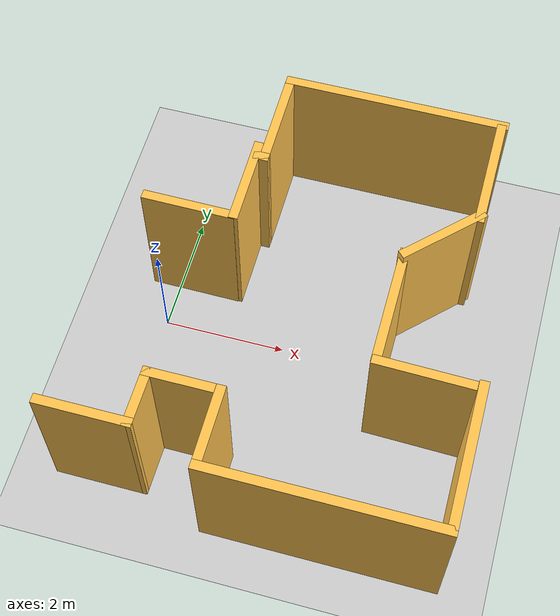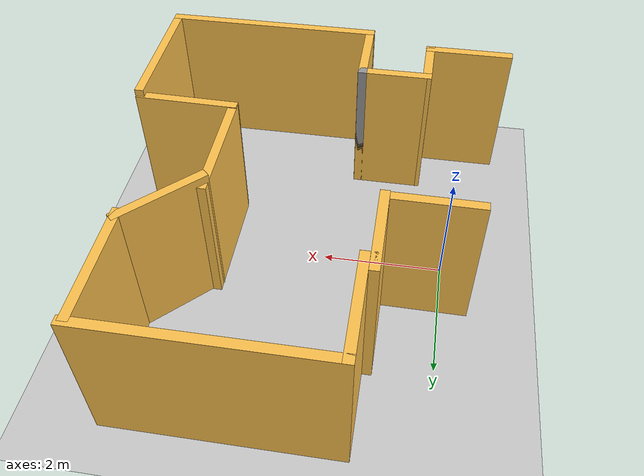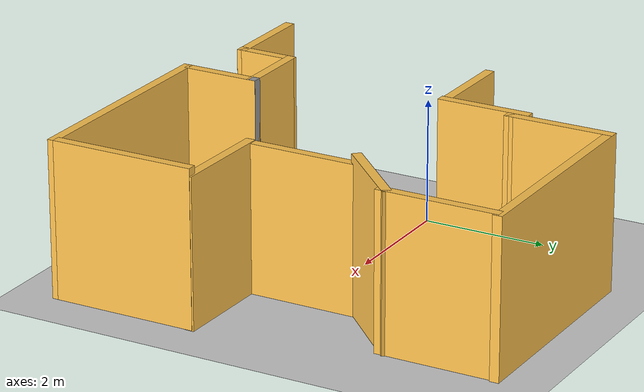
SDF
<sdf version="1.6">
 <world name="default">
  <model name="ground_plane">
   <static>1</static>
   <link name="link">
    <collision name="collision">
     <geometry><plane><normal>0 0 1</normal><size>100 100</size></plane></geometry>
     <surface>
      <contact><collide_bitmask>65535</collide_bitmask></contact>
      <friction><ode><mu>100</mu><mu2>50</mu2></ode></friction>
     </surface>
    </collision>
    <visual name="visual">
     <cast_shadows>0</cast_shadows>
     <geometry><plane><normal>0 0 1</normal><size>100 100</size></plane></geometry>
     <material>
      <script><uri>file://media/materials/scripts/gazebo.material</uri><name>Gazebo/Grey</name></script>
     </material>
    </visual>
   </link>
  </model>
  <model name="OrangeWorld_1">
   <link name="Wall_0">
    <pose>5.01158 -2.74468 0 0 -0 1.57358</pose>
    <visual name="Wall_0_Visual">
     <pose>0 0 1.25 0 -0 0</pose>
     <geometry><box><size>2.30301 0.15 2.5</size></box></geometry>
     <material>
      <script><uri>file://media/materials/scripts/gazebo.material</uri><name>Gazebo/Grey</name></script>
      <ambient>1 0.764706 0.305882 1</ambient>
      <shader type="pixel"/>
      <diffuse>0.7 0.7 0.7 1</diffuse>
      <specular>0.01 0.01 0.01 1</specular>
      <emissive>0 0 0 1</emissive>
     </material>
     <meta><layer>0</layer></meta>
    </visual>
    <collision name="Wall_0_Collision">
     <pose>0 0 1.25 0 -0 0</pose>
     <geometry><box><size>2.30301 0.15 2.5</size></box></geometry>
     <surface>
      <friction>
       <ode><mu>1</mu><mu2>1</mu2><fdir1>0 0 0</fdir1><slip1>0</slip1><slip2>0</slip2></ode>
       <torsional>
        <coefficient>1</coefficient>
        <patch_radius>0</patch_radius>
        <surface_radius>0</surface_radius>
        <use_patch_radius>1</use_patch_radius>
        <ode><slip>0</slip></ode>
       </torsional>
      </friction>
      <bounce><restitution_coefficient>0</restitution_coefficient><threshold>1e+06</threshold></bounce>
      <contact>
       <collide_without_contact>0</collide_without_contact>
       <collide_without_contact_bitmask>1</collide_without_contact_bitmask>
       <collide_bitmask>1</collide_bitmask>
       <ode>
        <soft_cfm>0</soft_cfm>
        <soft_erp>0.2</soft_erp>
        <kp>1e+13</kp>
        <kd>1</kd>
        <max_vel>0.01</max_vel>
        <min_depth>0</min_depth>
       </ode>
       <bullet>
        <split_impulse>1</split_impulse>
        <split_impulse_penetration_threshold>-0.01</split_impulse_penetration_threshold>
        <soft_cfm>0</soft_cfm>
        <soft_erp>0.2</soft_erp>
        <kp>1e+13</kp>
        <kd>1</kd>
       </bullet>
      </contact>
     </surface>
    </collision>
   </link>
   <link name="Wall_1">
    <pose>4.21704 -1.62322 -0.123 0 -0 3.12118</pose>
    <visual name="Wall_1_Visual">
     <pose>0 0 1.25 0 -0 0</pose>
     <geometry><box><size>1.72186 0.15 2.5</size></box></geometry>
     <material>
      <script><uri>file://media/materials/scripts/gazebo.material</uri><name>Gazebo/Grey</name></script>
      <ambient>1 0.764706 0.305882 1</ambient>
      <shader type="pixel"/>
      <diffuse>0.7 0.7 0.7 1</diffuse>
      <specular>0.01 0.01 0.01 1</specular>
      <emissive>0 0 0 1</emissive>
     </material>
     <meta><layer>0</layer></meta>
    </visual>
    <collision name="Wall_1_Collision">
     <pose>0 0 1.25 0 -0 0</pose>
     <geometry><box><size>1.72186 0.15 2.5</size></box></geometry>
     <surface>
      <friction>
       <ode><mu>1</mu><mu2>1</mu2><fdir1>0 0 0</fdir1><slip1>0</slip1><slip2>0</slip2></ode>
       <torsional>
        <coefficient>1</coefficient>
        <patch_radius>0</patch_radius>
        <surface_radius>0</surface_radius>
        <use_patch_radius>1</use_patch_radius>
        <ode><slip>0</slip></ode>
       </torsional>
      </friction>
      <bounce><restitution_coefficient>0</restitution_coefficient><threshold>1e+06</threshold></bounce>
      <contact>
       <collide_without_contact>0</collide_without_contact>
       <collide_without_contact_bitmask>1</collide_without_contact_bitmask>
       <collide_bitmask>1</collide_bitmask>
       <ode>
        <soft_cfm>0</soft_cfm>
        <soft_erp>0.2</soft_erp>
        <kp>1e+13</kp>
        <kd>1</kd>
        <max_vel>0.01</max_vel>
        <min_depth>0</min_depth>
       </ode>
       <bullet>
        <split_impulse>1</split_impulse>
        <split_impulse_penetration_threshold>-0.01</split_impulse_penetration_threshold>
        <soft_cfm>0</soft_cfm>
        <soft_erp>0.2</soft_erp>
        <kp>1e+13</kp>
        <kd>1</kd>
       </bullet>
      </contact>
     </surface>
    </collision>
   </link>
   <link name="Wall_12">
    <pose>0.018082 0.204928 -0.021351 0 -0 3.13458</pose>
    <visual name="Wall_12_Visual">
     <pose>0 0 1.25 0 -0 0</pose>
     <geometry><box><size>1.5 0.15 2.5</size></box></geometry>
     <material>
      <script><uri>file://media/materials/scripts/gazebo.material</uri><name>Gazebo/Grey</name></script>
      <ambient>1 0.764706 0.305882 1</ambient>
      <shader type="pixel"/>
      <diffuse>0.7 0.7 0.7 1</diffuse>
      <specular>0.01 0.01 0.01 1</specular>
      <emissive>0 0 0 1</emissive>
     </material>
     <meta><layer>0</layer></meta>
    </visual>
    <collision name="Wall_12_Collision">
     <pose>0 0 1.25 0 -0 0</pose>
     <geometry><box><size>1.5 0.15 2.5</size></box></geometry>
     <surface>
      <friction>
       <ode><mu>1</mu><mu2>1</mu2><fdir1>0 0 0</fdir1><slip1>0</slip1><slip2>0</slip2></ode>
       <torsional>
        <coefficient>1</coefficient>
        <patch_radius>0</patch_radius>
        <surface_radius>0</surface_radius>
        <use_patch_radius>1</use_patch_radius>
        <ode><slip>0</slip></ode>
       </torsional>
      </friction>
      <bounce><restitution_coefficient>0</restitution_coefficient><threshold>1e+06</threshold></bounce>
      <contact>
       <collide_without_contact>0</collide_without_contact>
       <collide_without_contact_bitmask>1</collide_without_contact_bitmask>
       <collide_bitmask>1</collide_bitmask>
       <ode>
        <soft_cfm>0</soft_cfm>
        <soft_erp>0.2</soft_erp>
        <kp>1e+13</kp>
        <kd>1</kd>
        <max_vel>0.01</max_vel>
        <min_depth>0</min_depth>
       </ode>
       <bullet>
        <split_impulse>1</split_impulse>
        <split_impulse_penetration_threshold>-0.01</split_impulse_penetration_threshold>
        <soft_cfm>0</soft_cfm>
        <soft_erp>0.2</soft_erp>
        <kp>1e+13</kp>
        <kd>1</kd>
       </bullet>
      </contact>
     </surface>
    </collision>
   </link>
   <link name="Wall_2">
    <pose>3.42333 -0.629117 -0.136708 0 -0 1.5708</pose>
    <visual name="Wall_2_Visual">
     <pose>0 0 1.25 0 -0 0</pose>
     <geometry><box><size>2 0.15 2.5</size></box></geometry>
     <material>
      <script><uri>file://media/materials/scripts/gazebo.material</uri><name>Gazebo/Grey</name></script>
      <ambient>1 0.764706 0.305882 1</ambient>
      <shader type="pixel"/>
      <diffuse>0.7 0.7 0.7 1</diffuse>
      <specular>0.01 0.01 0.01 1</specular>
      <emissive>0 0 0 1</emissive>
     </material>
     <meta><layer>0</layer></meta>
    </visual>
    <collision name="Wall_2_Collision">
     <pose>0 0 1.25 0 -0 0</pose>
     <geometry><box><size>2 0.15 2.5</size></box></geometry>
     <surface>
      <friction>
       <ode><mu>1</mu><mu2>1</mu2><fdir1>0 0 0</fdir1><slip1>0</slip1><slip2>0</slip2></ode>
       <torsional>
        <coefficient>1</coefficient>
        <patch_radius>0</patch_radius>
        <surface_radius>0</surface_radius>
        <use_patch_radius>1</use_patch_radius>
        <ode><slip>0</slip></ode>
       </torsional>
      </friction>
      <bounce><restitution_coefficient>0</restitution_coefficient><threshold>1e+06</threshold></bounce>
      <contact>
       <collide_without_contact>0</collide_without_contact>
       <collide_without_contact_bitmask>1</collide_without_contact_bitmask>
       <collide_bitmask>1</collide_bitmask>
       <ode>
        <soft_cfm>0</soft_cfm>
        <soft_erp>0.2</soft_erp>
        <kp>1e+13</kp>
        <kd>1</kd>
        <max_vel>0.01</max_vel>
        <min_depth>0</min_depth>
       </ode>
       <bullet>
        <split_impulse>1</split_impulse>
        <split_impulse_penetration_threshold>-0.01</split_impulse_penetration_threshold>
        <soft_cfm>0</soft_cfm>
        <soft_erp>0.2</soft_erp>
        <kp>1e+13</kp>
        <kd>1</kd>
       </bullet>
      </contact>
     </surface>
    </collision>
   </link>
   <link name="Wall_25">
    <pose>-0.370475 -3.54744 0 0 -0 0</pose>
    <visual name="Wall_25_Visual">
     <pose>0 0 1.25 0 -0 0</pose>
     <geometry><box><size>1.5 0.15 2.5</size></box></geometry>
     <material>
      <script><uri>file://media/materials/scripts/gazebo.material</uri><name>Gazebo/Grey</name></script>
      <ambient>1 0.764706 0.305882 1</ambient>
      <shader type="pixel"/>
      <diffuse>0.7 0.7 0.7 1</diffuse>
      <specular>0.01 0.01 0.01 1</specular>
      <emissive>0 0 0 1</emissive>
     </material>
     <meta><layer>0</layer></meta>
    </visual>
    <collision name="Wall_25_Collision">
     <pose>0 0 1.25 0 -0 0</pose>
     <geometry><box><size>1.5 0.15 2.5</size></box></geometry>
     <surface>
      <friction>
       <ode><mu>1</mu><mu2>1</mu2><fdir1>0 0 0</fdir1><slip1>0</slip1><slip2>0</slip2></ode>
       <torsional>
        <coefficient>1</coefficient>
        <patch_radius>0</patch_radius>
        <surface_radius>0</surface_radius>
        <use_patch_radius>1</use_patch_radius>
        <ode><slip>0</slip></ode>
       </torsional>
      </friction>
      <bounce><restitution_coefficient>0</restitution_coefficient><threshold>1e+06</threshold></bounce>
      <contact>
       <collide_without_contact>0</collide_without_contact>
       <collide_without_contact_bitmask>1</collide_without_contact_bitmask>
       <collide_bitmask>1</collide_bitmask>
       <ode>
        <soft_cfm>0</soft_cfm>
        <soft_erp>0.2</soft_erp>
        <kp>1e+13</kp>
        <kd>1</kd>
        <max_vel>0.01</max_vel>
        <min_depth>0</min_depth>
       </ode>
       <bullet>
        <split_impulse>1</split_impulse>
        <split_impulse_penetration_threshold>-0.01</split_impulse_penetration_threshold>
        <soft_cfm>0</soft_cfm>
        <soft_erp>0.2</soft_erp>
        <kp>1e+13</kp>
        <kd>1</kd>
       </bullet>
      </contact>
     </surface>
    </collision>
   </link>
   <link name="Wall_26">
    <pose>0.309439 -3.13427 0 0 -0 1.5589</pose>
    <visual name="Wall_26_Visual">
     <pose>0 0 1.25 0 -0 0</pose>
     <geometry><box><size>0.976401 0.15 2.5</size></box></geometry>
     <material>
      <script><uri>file://media/materials/scripts/gazebo.material</uri><name>Gazebo/Grey</name></script>
      <ambient>1 0.764706 0.305882 1</ambient>
      <shader type="pixel"/>
      <diffuse>0.7 0.7 0.7 1</diffuse>
      <specular>0.01 0.01 0.01 1</specular>
      <emissive>0 0 0 1</emissive>
     </material>
     <meta><layer>0</layer></meta>
    </visual>
    <collision name="Wall_26_Collision">
     <pose>0 0 1.25 0 -0 0</pose>
     <geometry><box><size>0.976401 0.15 2.5</size></box></geometry>
     <surface>
      <friction>
       <ode><mu>1</mu><mu2>1</mu2><fdir1>0 0 0</fdir1><slip1>0</slip1><slip2>0</slip2></ode>
       <torsional>
        <coefficient>1</coefficient>
        <patch_radius>0</patch_radius>
        <surface_radius>0</surface_radius>
        <use_patch_radius>1</use_patch_radius>
        <ode><slip>0</slip></ode>
       </torsional>
      </friction>
      <bounce><restitution_coefficient>0</restitution_coefficient><threshold>1e+06</threshold></bounce>
      <contact>
       <collide_without_contact>0</collide_without_contact>
       <collide_without_contact_bitmask>1</collide_without_contact_bitmask>
       <collide_bitmask>1</collide_bitmask>
       <ode>
        <soft_cfm>0</soft_cfm>
        <soft_erp>0.2</soft_erp>
        <kp>1e+13</kp>
        <kd>1</kd>
        <max_vel>0.01</max_vel>
        <min_depth>0</min_depth>
       </ode>
       <bullet>
        <split_impulse>1</split_impulse>
        <split_impulse_penetration_threshold>-0.01</split_impulse_penetration_threshold>
        <soft_cfm>0</soft_cfm>
        <soft_erp>0.2</soft_erp>
        <kp>1e+13</kp>
        <kd>1</kd>
       </bullet>
      </contact>
     </surface>
    </collision>
   </link>
   <link name="Wall_27">
    <pose>0.864353 -2.7211 0 0 -0 0</pose>
    <visual name="Wall_27_Visual">
     <pose>0 0 1.25 0 -0 0</pose>
     <geometry><box><size>1.25 0.15 2.5</size></box></geometry>
     <material>
      <script><uri>file://media/materials/scripts/gazebo.material</uri><name>Gazebo/Grey</name></script>
      <ambient>1 0.764706 0.305882 1</ambient>
      <shader type="pixel"/>
      <diffuse>0.7 0.7 0.7 1</diffuse>
      <specular>0.01 0.01 0.01 1</specular>
      <emissive>0 0 0 1</emissive>
     </material>
     <meta><layer>0</layer></meta>
    </visual>
    <collision name="Wall_27_Collision">
     <pose>0 0 1.25 0 -0 0</pose>
     <geometry><box><size>1.25 0.15 2.5</size></box></geometry>
     <surface>
      <friction>
       <ode><mu>1</mu><mu2>1</mu2><fdir1>0 0 0</fdir1><slip1>0</slip1><slip2>0</slip2></ode>
       <torsional>
        <coefficient>1</coefficient>
        <patch_radius>0</patch_radius>
        <surface_radius>0</surface_radius>
        <use_patch_radius>1</use_patch_radius>
        <ode><slip>0</slip></ode>
       </torsional>
      </friction>
      <bounce><restitution_coefficient>0</restitution_coefficient><threshold>1e+06</threshold></bounce>
      <contact>
       <collide_without_contact>0</collide_without_contact>
       <collide_without_contact_bitmask>1</collide_without_contact_bitmask>
       <collide_bitmask>1</collide_bitmask>
       <ode>
        <soft_cfm>0</soft_cfm>
        <soft_erp>0.2</soft_erp>
        <kp>1e+13</kp>
        <kd>1</kd>
        <max_vel>0.01</max_vel>
        <min_depth>0</min_depth>
       </ode>
       <bullet>
        <split_impulse>1</split_impulse>
        <split_impulse_penetration_threshold>-0.01</split_impulse_penetration_threshold>
        <soft_cfm>0</soft_cfm>
        <soft_erp>0.2</soft_erp>
        <kp>1e+13</kp>
        <kd>1</kd>
       </bullet>
      </contact>
     </surface>
    </collision>
   </link>
   <link name="Wall_28">
    <pose>1.41435 -2.7211 0 0 -0 0</pose>
    <visual name="Wall_28_Visual">
     <pose>0 0 1.25 0 -0 0</pose>
     <geometry><box><size>0.15 0.15 2.5</size></box></geometry>
     <material>
      <script><uri>file://media/materials/scripts/gazebo.material</uri><name>Gazebo/Grey</name></script>
      <ambient>1 1 1 1</ambient>
      <shader type="pixel"/>
      <diffuse>0.7 0.7 0.7 1</diffuse>
      <specular>0.01 0.01 0.01 1</specular>
      <emissive>0 0 0 1</emissive>
     </material>
     <meta><layer>0</layer></meta>
    </visual>
    <collision name="Wall_28_Collision">
     <pose>0 0 1.25 0 -0 0</pose>
     <geometry><box><size>0.15 0.15 2.5</size></box></geometry>
     <surface>
      <friction>
       <ode><mu>1</mu><mu2>1</mu2><fdir1>0 0 0</fdir1><slip1>0</slip1><slip2>0</slip2></ode>
       <torsional>
        <coefficient>1</coefficient>
        <patch_radius>0</patch_radius>
        <surface_radius>0</surface_radius>
        <use_patch_radius>1</use_patch_radius>
        <ode><slip>0</slip></ode>
       </torsional>
      </friction>
      <bounce><restitution_coefficient>0</restitution_coefficient><threshold>1e+06</threshold></bounce>
      <contact>
       <collide_without_contact>0</collide_without_contact>
       <collide_without_contact_bitmask>1</collide_without_contact_bitmask>
       <collide_bitmask>1</collide_bitmask>
       <ode>
        <soft_cfm>0</soft_cfm>
        <soft_erp>0.2</soft_erp>
        <kp>1e+13</kp>
        <kd>1</kd>
        <max_vel>0.01</max_vel>
        <min_depth>0</min_depth>
       </ode>
       <bullet>
        <split_impulse>1</split_impulse>
        <split_impulse_penetration_threshold>-0.01</split_impulse_penetration_threshold>
        <soft_cfm>0</soft_cfm>
        <soft_erp>0.2</soft_erp>
        <kp>1e+13</kp>
        <kd>1</kd>
       </bullet>
      </contact>
     </surface>
    </collision>
   </link>
   <link name="Wall_3">
    <pose>3.92482 0.704891 0 0 -0 0.788695</pose>
    <visual name="Wall_3_Visual">
     <pose>0 0 1.25 0 -0 0</pose>
     <geometry><box><size>1.53419 0.15 2.5</size></box></geometry>
     <material>
      <script><uri>file://media/materials/scripts/gazebo.material</uri><name>Gazebo/Grey</name></script>
      <ambient>1 0.764706 0.305882 1</ambient>
      <shader type="pixel"/>
      <diffuse>0.7 0.7 0.7 1</diffuse>
      <specular>0.01 0.01 0.01 1</specular>
      <emissive>0 0 0 1</emissive>
     </material>
     <meta><layer>0</layer></meta>
    </visual>
    <collision name="Wall_3_Collision">
     <pose>0 0 1.25 0 -0 0</pose>
     <geometry><box><size>1.53419 0.15 2.5</size></box></geometry>
     <surface>
      <friction>
       <ode><mu>1</mu><mu2>1</mu2><fdir1>0 0 0</fdir1><slip1>0</slip1><slip2>0</slip2></ode>
       <torsional>
        <coefficient>1</coefficient>
        <patch_radius>0</patch_radius>
        <surface_radius>0</surface_radius>
        <use_patch_radius>1</use_patch_radius>
        <ode><slip>0</slip></ode>
       </torsional>
      </friction>
      <bounce><restitution_coefficient>0</restitution_coefficient><threshold>1e+06</threshold></bounce>
      <contact>
       <collide_without_contact>0</collide_without_contact>
       <collide_without_contact_bitmask>1</collide_without_contact_bitmask>
       <collide_bitmask>1</collide_bitmask>
       <ode>
        <soft_cfm>0</soft_cfm>
        <soft_erp>0.2</soft_erp>
        <kp>1e+13</kp>
        <kd>1</kd>
        <max_vel>0.01</max_vel>
        <min_depth>0</min_depth>
       </ode>
       <bullet>
        <split_impulse>1</split_impulse>
        <split_impulse_penetration_threshold>-0.01</split_impulse_penetration_threshold>
        <soft_cfm>0</soft_cfm>
        <soft_erp>0.2</soft_erp>
        <kp>1e+13</kp>
        <kd>1</kd>
       </bullet>
      </contact>
     </surface>
    </collision>
   </link>
   <link name="Wall_31">
    <pose>1.41599 -3.2711 0 0 0 -1.5708</pose>
    <visual name="Wall_31_Visual">
     <pose>0 0 1.25 0 -0 0</pose>
     <geometry><box><size>1.25 0.15 2.5</size></box></geometry>
     <material>
      <script><uri>file://media/materials/scripts/gazebo.material</uri><name>Gazebo/Grey</name></script>
      <ambient>1 0.764706 0.305882 1</ambient>
      <shader type="pixel"/>
      <diffuse>0.7 0.7 0.7 1</diffuse>
      <specular>0.01 0.01 0.01 1</specular>
      <emissive>0 0 0 1</emissive>
     </material>
     <meta><layer>0</layer></meta>
    </visual>
    <collision name="Wall_31_Collision">
     <pose>0 0 1.25 0 -0 0</pose>
     <geometry><box><size>1.25 0.15 2.5</size></box></geometry>
     <surface>
      <friction>
       <ode><mu>1</mu><mu2>1</mu2><fdir1>0 0 0</fdir1><slip1>0</slip1><slip2>0</slip2></ode>
       <torsional>
        <coefficient>1</coefficient>
        <patch_radius>0</patch_radius>
        <surface_radius>0</surface_radius>
        <use_patch_radius>1</use_patch_radius>
        <ode><slip>0</slip></ode>
       </torsional>
      </friction>
      <bounce><restitution_coefficient>0</restitution_coefficient><threshold>1e+06</threshold></bounce>
      <contact>
       <collide_without_contact>0</collide_without_contact>
       <collide_without_contact_bitmask>1</collide_without_contact_bitmask>
       <collide_bitmask>1</collide_bitmask>
       <ode>
        <soft_cfm>0</soft_cfm>
        <soft_erp>0.2</soft_erp>
        <kp>1e+13</kp>
        <kd>1</kd>
        <max_vel>0.01</max_vel>
        <min_depth>0</min_depth>
       </ode>
       <bullet>
        <split_impulse>1</split_impulse>
        <split_impulse_penetration_threshold>-0.01</split_impulse_penetration_threshold>
        <soft_cfm>0</soft_cfm>
        <soft_erp>0.2</soft_erp>
        <kp>1e+13</kp>
        <kd>1</kd>
       </bullet>
      </contact>
     </surface>
    </collision>
   </link>
   <link name="Wall_32">
    <pose>3.21447 -3.91331 0 0 0 -2.4e-05</pose>
    <visual name="Wall_32_Visual">
     <pose>0 0 1.25 0 -0 0</pose>
     <geometry><box><size>3.75 0.15 2.5</size></box></geometry>
     <material>
      <script><uri>file://media/materials/scripts/gazebo.material</uri><name>Gazebo/Grey</name></script>
      <ambient>1 0.764706 0.305882 1</ambient>
      <shader type="pixel"/>
      <diffuse>0.7 0.7 0.7 1</diffuse>
      <specular>0.01 0.01 0.01 1</specular>
      <emissive>0 0 0 1</emissive>
     </material>
     <meta><layer>0</layer></meta>
    </visual>
    <collision name="Wall_32_Collision">
     <pose>0 0 1.25 0 -0 0</pose>
     <geometry><box><size>3.75 0.15 2.5</size></box></geometry>
     <surface>
      <friction>
       <ode><mu>1</mu><mu2>1</mu2><fdir1>0 0 0</fdir1><slip1>0</slip1><slip2>0</slip2></ode>
       <torsional>
        <coefficient>1</coefficient>
        <patch_radius>0</patch_radius>
        <surface_radius>0</surface_radius>
        <use_patch_radius>1</use_patch_radius>
        <ode><slip>0</slip></ode>
       </torsional>
      </friction>
      <bounce><restitution_coefficient>0</restitution_coefficient><threshold>1e+06</threshold></bounce>
      <contact>
       <collide_without_contact>0</collide_without_contact>
       <collide_without_contact_bitmask>1</collide_without_contact_bitmask>
       <collide_bitmask>1</collide_bitmask>
       <ode>
        <soft_cfm>0</soft_cfm>
        <soft_erp>0.2</soft_erp>
        <kp>1e+13</kp>
        <kd>1</kd>
        <max_vel>0.01</max_vel>
        <min_depth>0</min_depth>
       </ode>
       <bullet>
        <split_impulse>1</split_impulse>
        <split_impulse_penetration_threshold>-0.01</split_impulse_penetration_threshold>
        <soft_cfm>0</soft_cfm>
        <soft_erp>0.2</soft_erp>
        <kp>1e+13</kp>
        <kd>1</kd>
       </bullet>
      </contact>
     </surface>
    </collision>
   </link>
   <link name="Wall_4">
    <pose>4.40597 2.01968 0 0 -0 1.57095</pose>
    <visual name="Wall_4_Visual">
     <pose>0 0 1.25 0 -0 0</pose>
     <geometry><box><size>1.93193 0.15 2.5</size></box></geometry>
     <material>
      <script><uri>file://media/materials/scripts/gazebo.material</uri><name>Gazebo/Grey</name></script>
      <ambient>1 0.764706 0.305882 1</ambient>
      <shader type="pixel"/>
      <diffuse>0.7 0.7 0.7 1</diffuse>
      <specular>0.01 0.01 0.01 1</specular>
      <emissive>0 0 0 1</emissive>
     </material>
     <meta><layer>0</layer></meta>
    </visual>
    <collision name="Wall_4_Collision">
     <pose>0 0 1.25 0 -0 0</pose>
     <geometry><box><size>1.93193 0.15 2.5</size></box></geometry>
     <surface>
      <friction>
       <ode><mu>1</mu><mu2>1</mu2><fdir1>0 0 0</fdir1><slip1>0</slip1><slip2>0</slip2></ode>
       <torsional>
        <coefficient>1</coefficient>
        <patch_radius>0</patch_radius>
        <surface_radius>0</surface_radius>
        <use_patch_radius>1</use_patch_radius>
        <ode><slip>0</slip></ode>
       </torsional>
      </friction>
      <bounce><restitution_coefficient>0</restitution_coefficient><threshold>1e+06</threshold></bounce>
      <contact>
       <collide_without_contact>0</collide_without_contact>
       <collide_without_contact_bitmask>1</collide_without_contact_bitmask>
       <collide_bitmask>1</collide_bitmask>
       <ode>
        <soft_cfm>0</soft_cfm>
        <soft_erp>0.2</soft_erp>
        <kp>1e+13</kp>
        <kd>1</kd>
        <max_vel>0.01</max_vel>
        <min_depth>0</min_depth>
       </ode>
       <bullet>
        <split_impulse>1</split_impulse>
        <split_impulse_penetration_threshold>-0.01</split_impulse_penetration_threshold>
        <soft_cfm>0</soft_cfm>
        <soft_erp>0.2</soft_erp>
        <kp>1e+13</kp>
        <kd>1</kd>
       </bullet>
      </contact>
     </surface>
    </collision>
   </link>
   <link name="Wall_5">
    <pose>2.67208 2.97782 0 0 -0 3.14159</pose>
    <visual name="Wall_5_Visual">
     <pose>0 0 1.25 0 -0 0</pose>
     <geometry><box><size>3.68458 0.15 2.5</size></box></geometry>
     <material>
      <script><uri>file://media/materials/scripts/gazebo.material</uri><name>Gazebo/Grey</name></script>
      <ambient>1 0.764706 0.305882 1</ambient>
      <shader type="pixel"/>
      <diffuse>0.7 0.7 0.7 1</diffuse>
      <specular>0.01 0.01 0.01 1</specular>
      <emissive>0 0 0 1</emissive>
     </material>
     <meta><layer>0</layer></meta>
    </visual>
    <collision name="Wall_5_Collision">
     <pose>0 0 1.25 0 -0 0</pose>
     <geometry><box><size>3.68458 0.15 2.5</size></box></geometry>
     <surface>
      <friction>
       <ode><mu>1</mu><mu2>1</mu2><fdir1>0 0 0</fdir1><slip1>0</slip1><slip2>0</slip2></ode>
       <torsional>
        <coefficient>1</coefficient>
        <patch_radius>0</patch_radius>
        <surface_radius>0</surface_radius>
        <use_patch_radius>1</use_patch_radius>
        <ode><slip>0</slip></ode>
       </torsional>
      </friction>
      <bounce><restitution_coefficient>0</restitution_coefficient><threshold>1e+06</threshold></bounce>
      <contact>
       <collide_without_contact>0</collide_without_contact>
       <collide_without_contact_bitmask>1</collide_without_contact_bitmask>
       <collide_bitmask>1</collide_bitmask>
       <ode>
        <soft_cfm>0</soft_cfm>
        <soft_erp>0.2</soft_erp>
        <kp>1e+13</kp>
        <kd>1</kd>
        <max_vel>0.01</max_vel>
        <min_depth>0</min_depth>
       </ode>
       <bullet>
        <split_impulse>1</split_impulse>
        <split_impulse_penetration_threshold>-0.01</split_impulse_penetration_threshold>
        <soft_cfm>0</soft_cfm>
        <soft_erp>0.2</soft_erp>
        <kp>1e+13</kp>
        <kd>1</kd>
       </bullet>
      </contact>
     </surface>
    </collision>
   </link>
   <link name="Wall_6">
    <pose>0.904794 2.17769 0 0 0 -1.57053</pose>
    <visual name="Wall_6_Visual">
     <pose>0 0 1.25 0 -0 0</pose>
     <geometry><box><size>1.75 0.15 2.5</size></box></geometry>
     <material>
      <script><uri>file://media/materials/scripts/gazebo.material</uri><name>Gazebo/Grey</name></script>
      <ambient>1 0.764706 0.305882 1</ambient>
      <shader type="pixel"/>
      <diffuse>0.7 0.7 0.7 1</diffuse>
      <specular>0.01 0.01 0.01 1</specular>
      <emissive>0 0 0 1</emissive>
     </material>
     <meta><layer>0</layer></meta>
    </visual>
    <collision name="Wall_6_Collision">
     <pose>0 0 1.25 0 -0 0</pose>
     <geometry><box><size>1.75 0.15 2.5</size></box></geometry>
     <surface>
      <friction>
       <ode><mu>1</mu><mu2>1</mu2><fdir1>0 0 0</fdir1><slip1>0</slip1><slip2>0</slip2></ode>
       <torsional>
        <coefficient>1</coefficient>
        <patch_radius>0</patch_radius>
        <surface_radius>0</surface_radius>
        <use_patch_radius>1</use_patch_radius>
        <ode><slip>0</slip></ode>
       </torsional>
      </friction>
      <bounce><restitution_coefficient>0</restitution_coefficient><threshold>1e+06</threshold></bounce>
      <contact>
       <collide_without_contact>0</collide_without_contact>
       <collide_without_contact_bitmask>1</collide_without_contact_bitmask>
       <collide_bitmask>1</collide_bitmask>
       <ode>
        <soft_cfm>0</soft_cfm>
        <soft_erp>0.2</soft_erp>
        <kp>1e+13</kp>
        <kd>1</kd>
        <max_vel>0.01</max_vel>
        <min_depth>0</min_depth>
       </ode>
       <bullet>
        <split_impulse>1</split_impulse>
        <split_impulse_penetration_threshold>-0.01</split_impulse_penetration_threshold>
        <soft_cfm>0</soft_cfm>
        <soft_erp>0.2</soft_erp>
        <kp>1e+13</kp>
        <kd>1</kd>
       </bullet>
      </contact>
     </surface>
    </collision>
   </link>
   <link name="Wall_7">
    <pose>0.855006 1.37756 0 0 -0 3.14159</pose>
    <visual name="Wall_7_Visual">
     <pose>0 0 1.25 0 -0 0</pose>
     <geometry><box><size>0.25 0.15 2.5</size></box></geometry>
     <material>
      <script><uri>file://media/materials/scripts/gazebo.material</uri><name>Gazebo/Grey</name></script>
      <ambient>1 0.764706 0.305882 1</ambient>
      <shader type="pixel"/>
      <diffuse>0.7 0.7 0.7 1</diffuse>
      <specular>0.01 0.01 0.01 1</specular>
      <emissive>0 0 0 1</emissive>
     </material>
     <meta><layer>0</layer></meta>
    </visual>
    <collision name="Wall_7_Collision">
     <pose>0 0 1.25 0 -0 0</pose>
     <geometry><box><size>0.25 0.15 2.5</size></box></geometry>
     <surface>
      <friction>
       <ode><mu>1</mu><mu2>1</mu2><fdir1>0 0 0</fdir1><slip1>0</slip1><slip2>0</slip2></ode>
       <torsional>
        <coefficient>1</coefficient>
        <patch_radius>0</patch_radius>
        <surface_radius>0</surface_radius>
        <use_patch_radius>1</use_patch_radius>
        <ode><slip>0</slip></ode>
       </torsional>
      </friction>
      <bounce><restitution_coefficient>0</restitution_coefficient><threshold>1e+06</threshold></bounce>
      <contact>
       <collide_without_contact>0</collide_without_contact>
       <collide_without_contact_bitmask>1</collide_without_contact_bitmask>
       <collide_bitmask>1</collide_bitmask>
       <ode>
        <soft_cfm>0</soft_cfm>
        <soft_erp>0.2</soft_erp>
        <kp>1e+13</kp>
        <kd>1</kd>
        <max_vel>0.01</max_vel>
        <min_depth>0</min_depth>
       </ode>
       <bullet>
        <split_impulse>1</split_impulse>
        <split_impulse_penetration_threshold>-0.01</split_impulse_penetration_threshold>
        <soft_cfm>0</soft_cfm>
        <soft_erp>0.2</soft_erp>
        <kp>1e+13</kp>
        <kd>1</kd>
       </bullet>
      </contact>
     </surface>
    </collision>
   </link>
   <link name="Wall_8">
    <pose>0.753752 0.877776 0 0 0 -1.5708</pose>
    <visual name="Wall_8_Visual">
     <pose>0 0 1.25 0 -0 0</pose>
     <geometry><box><size>1.5 0.15 2.5</size></box></geometry>
     <material>
      <script><uri>file://media/materials/scripts/gazebo.material</uri><name>Gazebo/Grey</name></script>
      <ambient>1 0.764706 0.305882 1</ambient>
      <shader type="pixel"/>
      <diffuse>0.7 0.7 0.7 1</diffuse>
      <specular>0.01 0.01 0.01 1</specular>
      <emissive>0 0 0 1</emissive>
     </material>
     <meta><layer>0</layer></meta>
    </visual>
    <collision name="Wall_8_Collision">
     <pose>0 0 1.25 0 -0 0</pose>
     <geometry><box><size>1.5 0.15 2.5</size></box></geometry>
     <surface>
      <friction>
       <ode><mu>1</mu><mu2>1</mu2><fdir1>0 0 0</fdir1><slip1>0</slip1><slip2>0</slip2></ode>
       <torsional>
        <coefficient>1</coefficient>
        <patch_radius>0</patch_radius>
        <surface_radius>0</surface_radius>
        <use_patch_radius>1</use_patch_radius>
        <ode><slip>0</slip></ode>
       </torsional>
      </friction>
      <bounce><restitution_coefficient>0</restitution_coefficient><threshold>1e+06</threshold></bounce>
      <contact>
       <collide_without_contact>0</collide_without_contact>
       <collide_without_contact_bitmask>1</collide_without_contact_bitmask>
       <collide_bitmask>1</collide_bitmask>
       <ode>
        <soft_cfm>0</soft_cfm>
        <soft_erp>0.2</soft_erp>
        <kp>1e+13</kp>
        <kd>1</kd>
        <max_vel>0.01</max_vel>
        <min_depth>0</min_depth>
       </ode>
       <bullet>
        <split_impulse>1</split_impulse>
        <split_impulse_penetration_threshold>-0.01</split_impulse_penetration_threshold>
        <soft_cfm>0</soft_cfm>
        <soft_erp>0.2</soft_erp>
        <kp>1e+13</kp>
        <kd>1</kd>
       </bullet>
      </contact>
     </surface>
    </collision>
   </link>
   <static>1</static>
   <pose>0.259466 0.59963 0 0 -0 0</pose>
  </model>
 </world>
</sdf>
